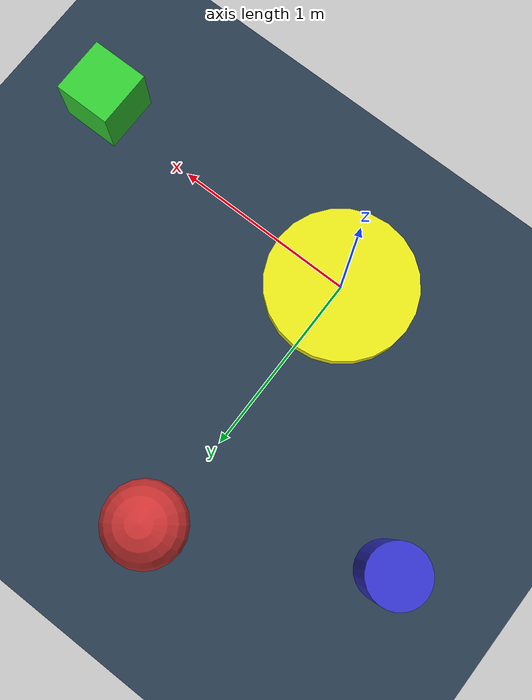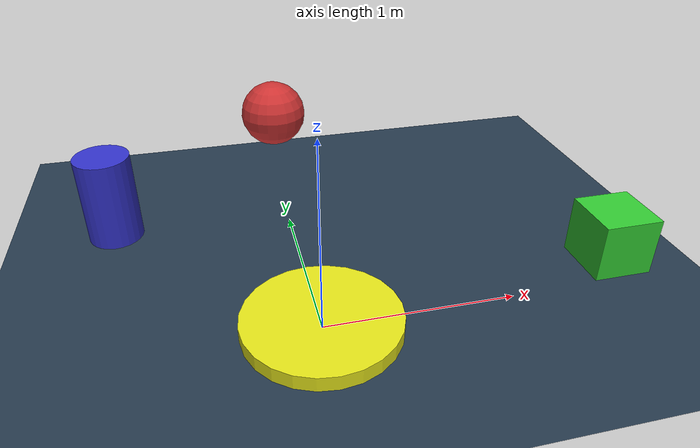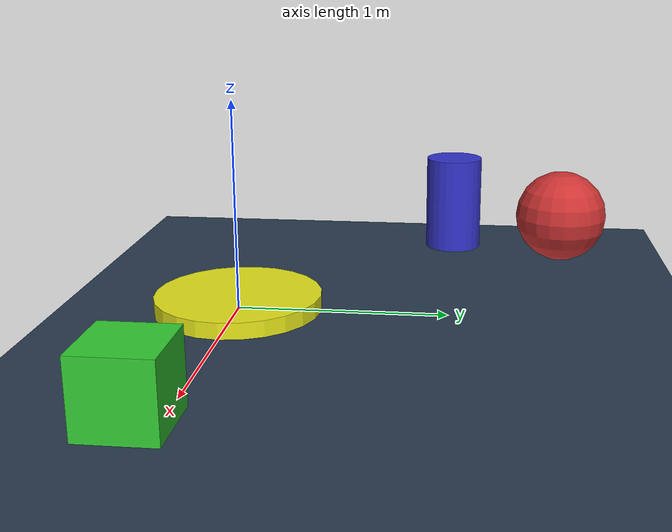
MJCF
<mujoco model="multi_camera_scene">
  <compiler angle="degree"/>

  <visual>
    <map fogstart="3" fogend="5" force="0.1" znear="0.001"/>
    <quality shadowsize="2048"/>
  </visual>

  <option timestep="0.005"/>

  <!-- ========== Assets ========== -->
  <asset>
    <texture type="skybox" builtin="gradient" rgb1="0.3 0.5 0.7" rgb2="0.0 0.0 0.0" width="512" height="512"/>
    <texture name="tex_floor" type="2d" builtin="checker" width="512" height="512"
             rgb1="0.2 0.3 0.4" rgb2="0.1 0.15 0.2"/>
    <material name="mat_floor" texture="tex_floor" texrepeat="5 5" reflectance="0.1"/>
    <material name="mat_red"   rgba="0.8 0.2 0.2 1.0" specular="0.3" shininess="0.4"/>
    <material name="mat_green" rgba="0.2 0.8 0.2 1.0" specular="0.3" shininess="0.4"/>
    <material name="mat_blue"  rgba="0.2 0.2 0.8 1.0" specular="0.3" shininess="0.4"/>
    <material name="mat_yellow" rgba="0.9 0.9 0.1 1.0" specular="0.5" shininess="0.6"/>
  </asset>

  <!-- ========== World body ========== -->
  <worldbody>
    <!-- 光照 -->
    <light name="light_sun" directional="true" diffuse="0.7 0.7 0.7" specular="0.2 0.2 0.2"
           pos="3 -3 5" dir="-0.4 0.4 -0.5" castshadow="true"/>

    <!-- 地板 -->
    <geom name="floor" type="plane" size="0 0 0.05" material="mat_floor" pos="0 0 0"/>

    <!-- 红色球 -->
    <body name="red_sphere" pos="0 1.5 0.5">
      <joint name="red_sphere_fall" type="free"/>
      <geom name="red_sphere_geom" type="sphere" size="0.2" material="mat_red"/>
    </body>

    <!-- 绿色方块 -->
    <body name="green_box" pos="1.5 0 0.3">
      <joint name="green_box_fall" type="free"/>
      <geom name="green_box_geom" type="box" size="0.15 0.15 0.15" material="mat_green"/>
    </body>

    <!-- 蓝色圆柱 -->
    <body name="blue_cylinder" pos="-1 1 0.3">
      <joint name="blue_cylinder_fall" type="free"/>
      <geom name="blue_cylinder_geom" type="cylinder" size="0.15 0.25" material="mat_blue"/>
    </body>

    <!-- 黄色胶囊台座 -->
    <geom name="pedestal" type="cylinder" size="0.4 0.05" material="mat_yellow" pos="0 0 0.025"/>

    <!-- ========== 相机 1：俯视正交 ========== -->
    <camera name="cam_top" mode="fixed" pos="0 0 4" quat="1 0 0 0"
            fovy="45" resolution="640 480"/>

    <!-- ========== 相机 2：正面透视 ========== -->
    <camera name="cam_front" mode="fixed" pos="0 -4 1" quat="0.707 0.707 0 0"
            fovy="45" resolution="640 480"/>

    <!-- ========== 相机 3：侧面透视 ========== -->
    <camera name="cam_side" mode="fixed" pos="4 0 1.5" quat="0.5 0.5 0.5 0.5"
            fovy="50" resolution="800 600"/>

    <!-- ========== 相机 4：近景跟踪 ========== -->
    <camera name="cam_closeup" mode="targetbody" target="red_sphere"
            pos="0 2 0.5" fovy="60" resolution="640 480"/>
  </worldbody>
</mujoco>
